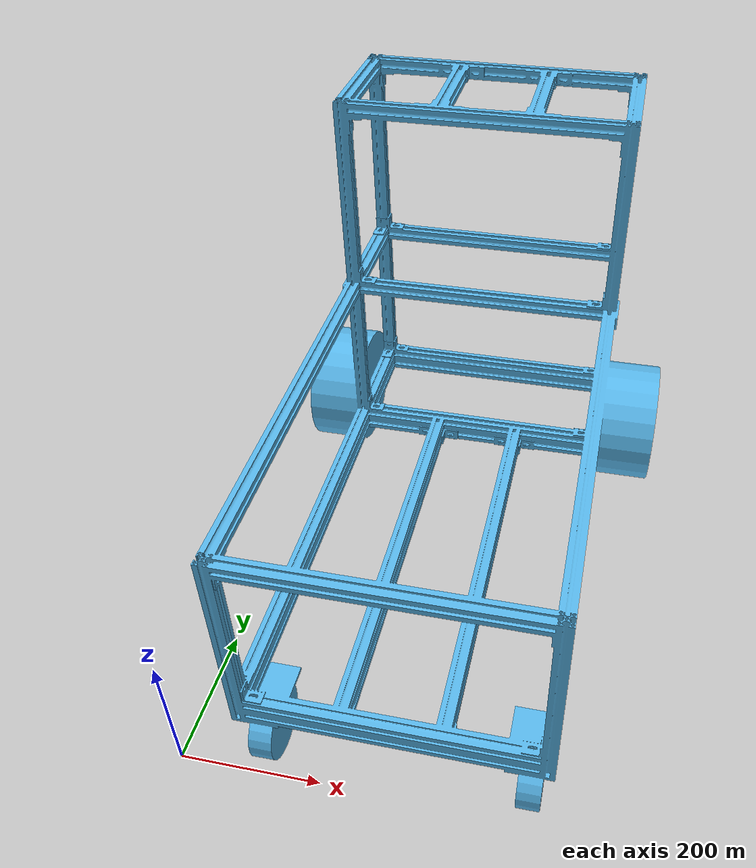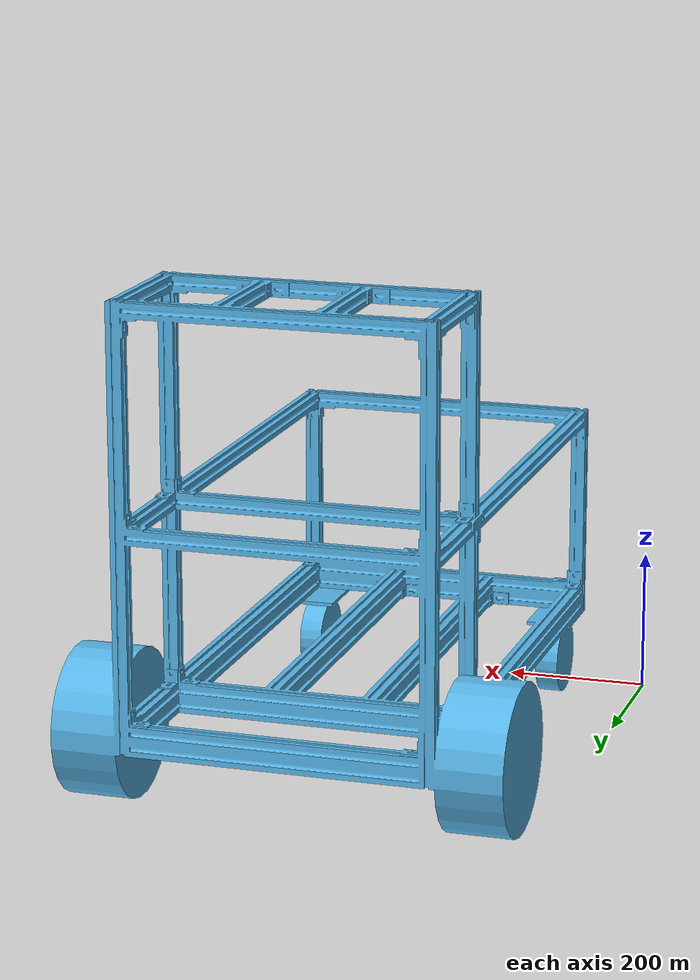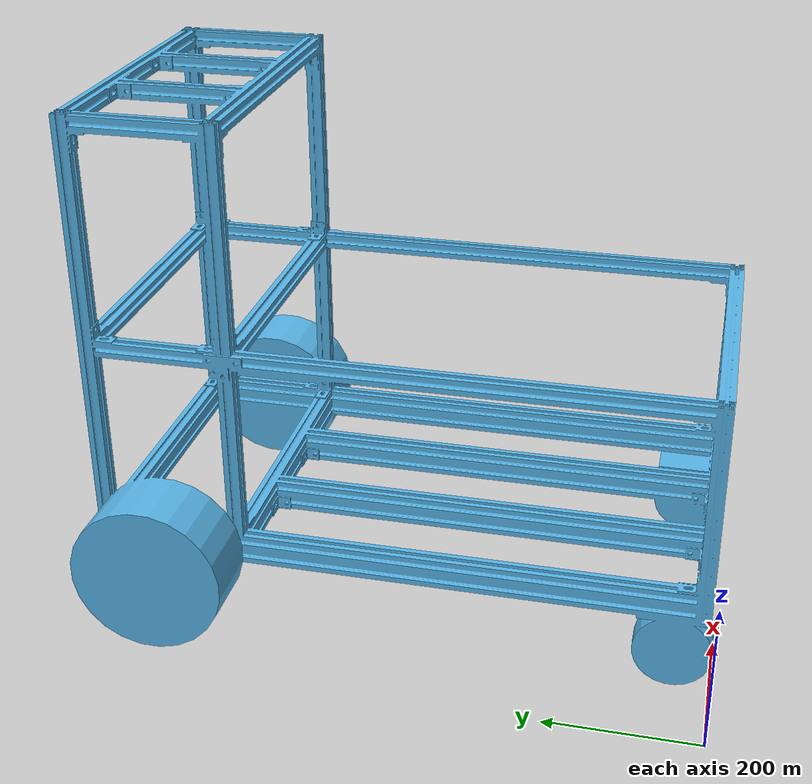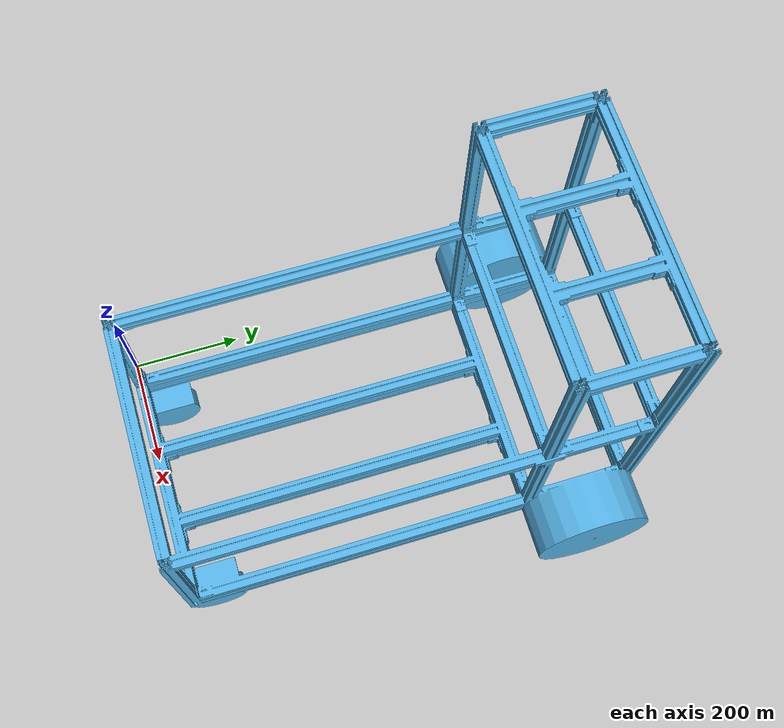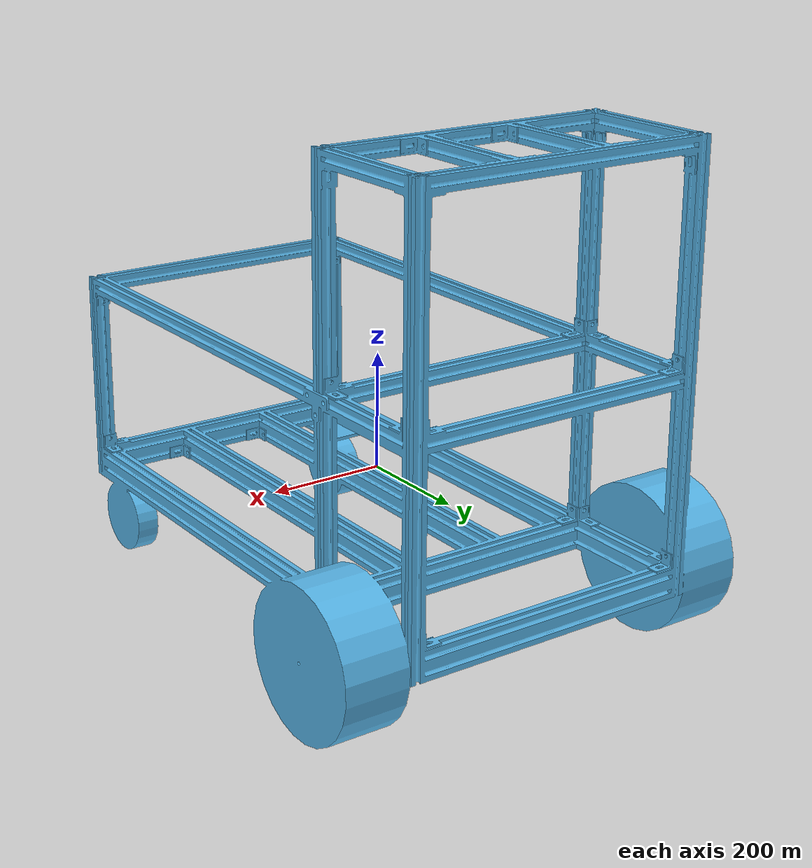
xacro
<?xmal version="1.0"?>
<robot xmlns:xacro='https://ros.org/wiki/xacro' name='urdf_test'>

    <link name = 'base_link'/>

    <joint name = 'body_joint' type='fixed'>
        <parent link='base_link'/>
        <child link = 'test'/>
    </joint>

    <link name="test">
        <visual>
            <origin rpy="0.0 0 0" xyz="0 0 0"/>
            <geometry>
                <mesh filename="package://urdf_tutorial/meshes/aaa.stl" scale="1 1 1"/>
            </geometry>
        </visual>
    </link>

</robot>
